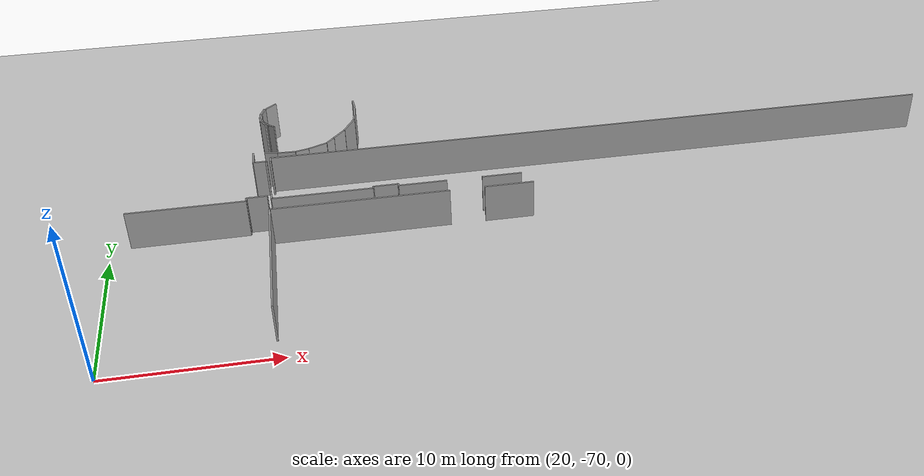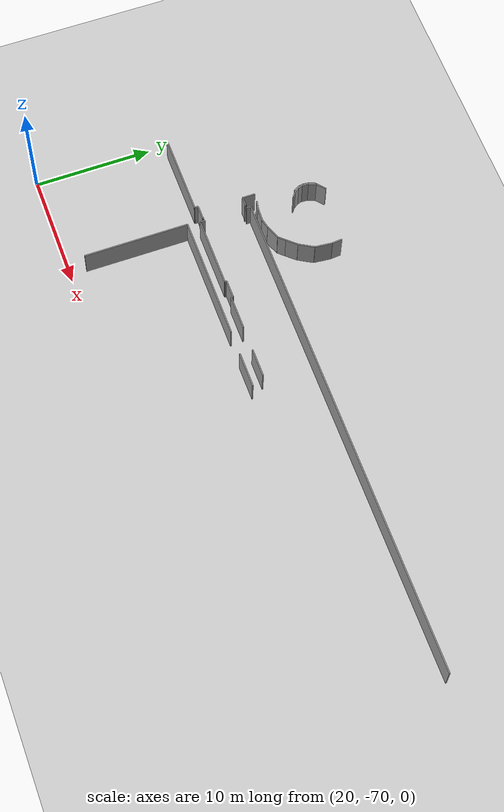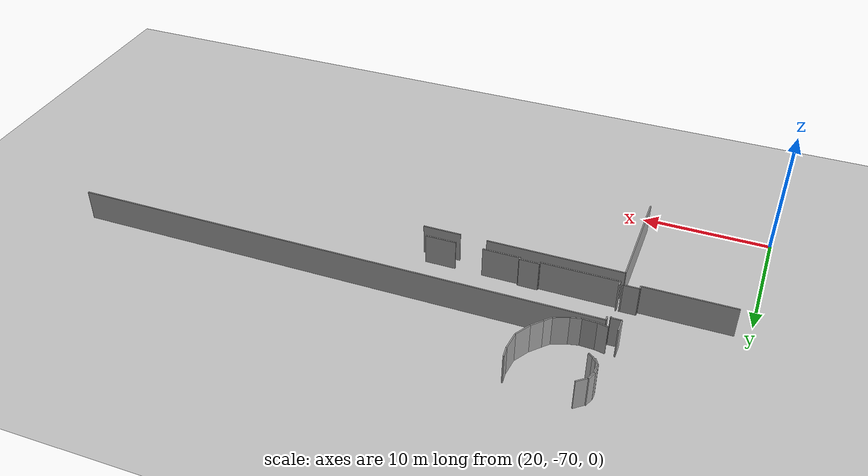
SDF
<sdf version="1.6">
 <world name="default">
  <model name="ground_plane">
   <static>1</static>
   <link name="link">
    <collision name="collision">
     <geometry><plane><normal>0 0 1</normal><size>100 100</size></plane></geometry>
     <surface><friction><ode><mu>100</mu><mu2>50</mu2></ode></friction></surface>
    </collision>
    <visual name="visual">
     <cast_shadows>0</cast_shadows>
     <geometry><plane><normal>0 0 1</normal><size>100 100</size></plane></geometry>
     <material>
      <script><uri>file://media/materials/scripts/gazebo.material</uri><name>Gazebo/Grey</name></script>
     </material>
    </visual>
   </link>
  </model>
  <model name="0510035518_A_40_1_101">
   <static>1</static>
   <link name="Wall_225">
    <collision name="Wall_225_Collision">
     <geometry><box><size>0.684761901372 0.1 2.5</size></box></geometry>
     <pose>0.342380950686 0 1.25 0 0 0</pose>
    </collision>
    <visual name="Wall_225_Visual">
     <pose>0.342380950686 0 1.25 0 0 0</pose>
     <geometry><box><size>0.684761901372 0.1 2.5</size></box></geometry>
     <material>
      <script><uri>file://media/materials/scripts/gazebo.material</uri><name>Gazebo/Grey</name></script>
      <ambient>1 1 1 1</ambient>
     </material>
    </visual>
    <pose>146.113178787 -116.901619562 0 0 0 -1.94689350065</pose>
   </link>
   <link name="Wall_226">
    <collision name="Wall_226_Collision">
     <geometry><box><size>0.429461764337 0.1 2.5</size></box></geometry>
     <pose>0.214730882168 0 1.25 0 0 0</pose>
    </collision>
    <visual name="Wall_226_Visual">
     <pose>0.214730882168 0 1.25 0 0 0</pose>
     <geometry><box><size>0.429461764337 0.1 2.5</size></box></geometry>
     <material>
      <script><uri>file://media/materials/scripts/gazebo.material</uri><name>Gazebo/Grey</name></script>
      <ambient>1 1 1 1</ambient>
     </material>
    </visual>
    <pose>145.861670372 -117.538520165 0 0 0 -1.67093587218</pose>
   </link>
   <link name="Wall_227">
    <collision name="Wall_227_Collision">
     <geometry><box><size>0.371400035721 0.1 2.5</size></box></geometry>
     <pose>0.18570001786 0 1.25 0 0 0</pose>
    </collision>
    <visual name="Wall_227_Visual">
     <pose>0.18570001786 0 1.25 0 0 0</pose>
     <geometry><box><size>0.371400035721 0.1 2.5</size></box></geometry>
     <material>
      <script><uri>file://media/materials/scripts/gazebo.material</uri><name>Gazebo/Grey</name></script>
      <ambient>1 1 1 1</ambient>
     </material>
    </visual>
    <pose>145.818736107 -117.965830422 0 0 0 -1.46663546385</pose>
   </link>
   <link name="Wall_228">
    <collision name="Wall_228_Collision">
     <geometry><box><size>0.650359687576 0.1 2.5</size></box></geometry>
     <pose>0.325179843788 0 1.25 0 0 0</pose>
    </collision>
    <visual name="Wall_228_Visual">
     <pose>0.325179843788 0 1.25 0 0 0</pose>
     <geometry><box><size>0.650359687576 0.1 2.5</size></box></geometry>
     <material>
      <script><uri>file://media/materials/scripts/gazebo.material</uri><name>Gazebo/Grey</name></script>
      <ambient>1 1 1 1</ambient>
     </material>
    </visual>
    <pose>145.85735154 -118.335217529 0 0 0 -1.04719266176</pose>
   </link>
   <link name="Wall_229">
    <collision name="Wall_229_Collision">
     <geometry><box><size>1.07411876786 0.1 2.5</size></box></geometry>
     <pose>0.537059383931 0 1.25 0 0 0</pose>
    </collision>
    <visual name="Wall_229_Visual">
     <pose>0.537059383931 0 1.25 0 0 0</pose>
     <geometry><box><size>1.07411876786 0.1 2.5</size></box></geometry>
     <material>
      <script><uri>file://media/materials/scripts/gazebo.material</uri><name>Gazebo/Grey</name></script>
      <ambient>1 1 1 1</ambient>
     </material>
    </visual>
    <pose>145.36119403 -122.111146396 0 0 0 -1.57079632679</pose>
   </link>
   <link name="Wall_230">
    <collision name="Wall_230_Collision">
     <geometry><box><size>0.785519212448 0.1 2.5</size></box></geometry>
     <pose>0.392759606224 0 1.25 0 0 0</pose>
    </collision>
    <visual name="Wall_230_Visual">
     <pose>0.392759606224 0 1.25 0 0 0</pose>
     <geometry><box><size>0.785519212448 0.1 2.5</size></box></geometry>
     <material>
      <script><uri>file://media/materials/scripts/gazebo.material</uri><name>Gazebo/Grey</name></script>
      <ambient>1 1 1 1</ambient>
     </material>
    </visual>
    <pose>145.36119403 -123.185265164 0 0 0 0.0</pose>
   </link>
   <link name="Wall_231">
    <collision name="Wall_231_Collision">
     <geometry><box><size>0.109241028898 0.1 2.5</size></box></geometry>
     <pose>0.054620514449 0 1.25 0 0 0</pose>
    </collision>
    <visual name="Wall_231_Visual">
     <pose>0.054620514449 0 1.25 0 0 0</pose>
     <geometry><box><size>0.109241028898 0.1 2.5</size></box></geometry>
     <material>
      <script><uri>file://media/materials/scripts/gazebo.material</uri><name>Gazebo/Grey</name></script>
      <ambient>1 1 1 1</ambient>
     </material>
    </visual>
    <pose>146.146713242 -123.185265164 0 0 0 -1.57079632679</pose>
   </link>
   <link name="Wall_232">
    <collision name="Wall_232_Collision">
     <geometry><box><size>0.0815496983169 0.1 2.5</size></box></geometry>
     <pose>0.0407748491585 0 1.25 0 0 0</pose>
    </collision>
    <visual name="Wall_232_Visual">
     <pose>0.0407748491585 0 1.25 0 0 0</pose>
     <geometry><box><size>0.0815496983169 0.1 2.5</size></box></geometry>
     <material>
      <script><uri>file://media/materials/scripts/gazebo.material</uri><name>Gazebo/Grey</name></script>
      <ambient>1 1 1 1</ambient>
     </material>
    </visual>
    <pose>146.146713242 -126.864909495 0 0 0 -1.57079632679</pose>
   </link>
   <link name="Wall_233">
    <collision name="Wall_233_Collision">
     <geometry><box><size>1.22121308352 0.1 2.5</size></box></geometry>
     <pose>0.610606541759 0 1.25 0 0 0</pose>
    </collision>
    <visual name="Wall_233_Visual">
     <pose>0.610606541759 0 1.25 0 0 0</pose>
     <geometry><box><size>1.22121308352 0.1 2.5</size></box></geometry>
     <material>
      <script><uri>file://media/materials/scripts/gazebo.material</uri><name>Gazebo/Grey</name></script>
      <ambient>1 1 1 1</ambient>
     </material>
    </visual>
    <pose>146.146713242 -126.946459193 0 0 0 3.14159265359</pose>
   </link>
   <link name="Wall_234">
    <collision name="Wall_234_Collision">
     <geometry><box><size>0.30790727215 0.1 2.5</size></box></geometry>
     <pose>0.153953636075 0 1.25 0 0 0</pose>
    </collision>
    <visual name="Wall_234_Visual">
     <pose>0.153953636075 0 1.25 0 0 0</pose>
     <geometry><box><size>0.30790727215 0.1 2.5</size></box></geometry>
     <material>
      <script><uri>file://media/materials/scripts/gazebo.material</uri><name>Gazebo/Grey</name></script>
      <ambient>1 1 1 1</ambient>
     </material>
    </visual>
    <pose>144.925500159 -126.946459193 0 0 0 -1.57079632679</pose>
   </link>
   <link name="Wall_235">
    <collision name="Wall_235_Collision">
     <geometry><box><size>6.99855367895 0.1 2.5</size></box></geometry>
     <pose>3.49927683948 0 1.25 0 0 0</pose>
    </collision>
    <visual name="Wall_235_Visual">
     <pose>3.49927683948 0 1.25 0 0 0</pose>
     <geometry><box><size>6.99855367895 0.1 2.5</size></box></geometry>
     <material>
      <script><uri>file://media/materials/scripts/gazebo.material</uri><name>Gazebo/Grey</name></script>
      <ambient>1 1 1 1</ambient>
     </material>
    </visual>
    <pose>144.925500159 -127.254366466 0 0 0 -3.13955984094</pose>
   </link>
   <link name="Wall_249">
    <collision name="Wall_249_Collision">
     <geometry><box><size>0.874664847197 0.1 2.5</size></box></geometry>
     <pose>0.437332423598 0 1.25 0 0 0</pose>
    </collision>
    <visual name="Wall_249_Visual">
     <pose>0.437332423598 0 1.25 0 0 0</pose>
     <geometry><box><size>0.874664847197 0.1 2.5</size></box></geometry>
     <material>
      <script><uri>file://media/materials/scripts/gazebo.material</uri><name>Gazebo/Grey</name></script>
      <ambient>1 1 1 1</ambient>
     </material>
    </visual>
    <pose>151.86789457 -116.891965703 0 0 0 -1.48763097411</pose>
   </link>
   <link name="Wall_250">
    <collision name="Wall_250_Collision">
     <geometry><box><size>1.47431145919 0.1 2.5</size></box></geometry>
     <pose>0.737155729595 0 1.25 0 0 0</pose>
    </collision>
    <visual name="Wall_250_Visual">
     <pose>0.737155729595 0 1.25 0 0 0</pose>
     <geometry><box><size>1.47431145919 0.1 2.5</size></box></geometry>
     <material>
      <script><uri>file://media/materials/scripts/gazebo.material</uri><name>Gazebo/Grey</name></script>
      <ambient>1 1 1 1</ambient>
     </material>
    </visual>
    <pose>151.940552556 -117.763607494 0 0 0 -1.6695219392</pose>
   </link>
   <link name="Wall_251">
    <collision name="Wall_251_Collision">
     <geometry><box><size>1.39251620445 0.1 2.5</size></box></geometry>
     <pose>0.696258102224 0 1.25 0 0 0</pose>
    </collision>
    <visual name="Wall_251_Visual">
     <pose>0.696258102224 0 1.25 0 0 0</pose>
     <geometry><box><size>1.39251620445 0.1 2.5</size></box></geometry>
     <material>
      <script><uri>file://media/materials/scripts/gazebo.material</uri><name>Gazebo/Grey</name></script>
      <ambient>1 1 1 1</ambient>
     </material>
    </visual>
    <pose>151.795236583 -119.230739917 0 0 0 -2.09510181686</pose>
   </link>
   <link name="Wall_252">
    <collision name="Wall_252_Collision">
     <geometry><box><size>1.0700927374 0.1 2.5</size></box></geometry>
     <pose>0.535046368701 0 1.25 0 0 0</pose>
    </collision>
    <visual name="Wall_252_Visual">
     <pose>0.535046368701 0 1.25 0 0 0</pose>
     <geometry><box><size>1.0700927374 0.1 2.5</size></box></geometry>
     <material>
      <script><uri>file://media/materials/scripts/gazebo.material</uri><name>Gazebo/Grey</name></script>
      <ambient>1 1 1 1</ambient>
     </material>
    </visual>
    <pose>151.098126389 -120.436201969 0 0 0 -2.29858217756</pose>
   </link>
   <link name="Wall_253">
    <collision name="Wall_253_Collision">
     <geometry><box><size>0.709172408828 0.1 2.5</size></box></geometry>
     <pose>0.354586204414 0 1.25 0 0 0</pose>
    </collision>
    <visual name="Wall_253_Visual">
     <pose>0.354586204414 0 1.25 0 0 0</pose>
     <geometry><box><size>0.709172408828 0.1 2.5</size></box></geometry>
     <material>
      <script><uri>file://media/materials/scripts/gazebo.material</uri><name>Gazebo/Grey</name></script>
      <ambient>1 1 1 1</ambient>
     </material>
    </visual>
    <pose>150.386281359 -121.235185773 0 0 0 -2.31261155836</pose>
   </link>
   <link name="Wall_254">
    <collision name="Wall_254_Collision">
     <geometry><box><size>1.21930583102 0.1 2.5</size></box></geometry>
     <pose>0.609652915509 0 1.25 0 0 0</pose>
    </collision>
    <visual name="Wall_254_Visual">
     <pose>0.609652915509 0 1.25 0 0 0</pose>
     <geometry><box><size>1.21930583102 0.1 2.5</size></box></geometry>
     <material>
      <script><uri>file://media/materials/scripts/gazebo.material</uri><name>Gazebo/Grey</name></script>
      <ambient>1 1 1 1</ambient>
     </material>
    </visual>
    <pose>149.907145125 -121.758018419 0 0 0 -2.76321426212</pose>
   </link>
   <link name="Wall_255">
    <collision name="Wall_255_Collision">
     <geometry><box><size>0.835077452535 0.1 2.5</size></box></geometry>
     <pose>0.417538726267 0 1.25 0 0 0</pose>
    </collision>
    <visual name="Wall_255_Visual">
     <pose>0.417538726267 0 1.25 0 0 0</pose>
     <geometry><box><size>0.835077452535 0.1 2.5</size></box></geometry>
     <material>
      <script><uri>file://media/materials/scripts/gazebo.material</uri><name>Gazebo/Grey</name></script>
      <ambient>1 1 1 1</ambient>
     </material>
    </visual>
    <pose>148.774087012 -122.208447126 0 0 0 -2.91358527802</pose>
   </link>
   <link name="Wall_256">
    <collision name="Wall_256_Collision">
     <geometry><box><size>1.10470702831 0.1 2.5</size></box></geometry>
     <pose>0.552353514157 0 1.25 0 0 0</pose>
    </collision>
    <visual name="Wall_256_Visual">
     <pose>0.552353514157 0 1.25 0 0 0</pose>
     <geometry><box><size>1.10470702831 0.1 2.5</size></box></geometry>
     <material>
      <script><uri>file://media/materials/scripts/gazebo.material</uri><name>Gazebo/Grey</name></script>
      <ambient>1 1 1 1</ambient>
     </material>
    </visual>
    <pose>147.96062242 -122.397205462 0 0 0 3.10202758079</pose>
   </link>
   <link name="Wall_257">
    <collision name="Wall_257_Collision">
     <geometry><box><size>0.800612258339 0.1 2.5</size></box></geometry>
     <pose>0.40030612917 0 1.25 0 0 0</pose>
    </collision>
    <visual name="Wall_257_Visual">
     <pose>0.40030612917 0 1.25 0 0 0</pose>
     <geometry><box><size>0.800612258339 0.1 2.5</size></box></geometry>
     <material>
      <script><uri>file://media/materials/scripts/gazebo.material</uri><name>Gazebo/Grey</name></script>
      <ambient>1 1 1 1</ambient>
     </material>
    </visual>
    <pose>146.85677993 -122.35350905 0 0 0 2.94064990593</pose>
   </link>
   <link name="Wall_258">
    <collision name="Wall_258_Collision">
     <geometry><box><size>0.44632604023 0.1 2.5</size></box></geometry>
     <pose>0.223163020115 0 1.25 0 0 0</pose>
    </collision>
    <visual name="Wall_258_Visual">
     <pose>0.223163020115 0 1.25 0 0 0</pose>
     <geometry><box><size>0.44632604023 0.1 2.5</size></box></geometry>
     <material>
      <script><uri>file://media/materials/scripts/gazebo.material</uri><name>Gazebo/Grey</name></script>
      <ambient>1 1 1 1</ambient>
     </material>
    </visual>
    <pose>146.711463957 -119.201524293 0 0 0 2.52074765388</pose>
   </link>
   <link name="Wall_259">
    <collision name="Wall_259_Collision">
     <geometry><box><size>0.527150742059 0.1 2.5</size></box></geometry>
     <pose>0.26357537103 0 1.25 0 0 0</pose>
    </collision>
    <visual name="Wall_259_Visual">
     <pose>0.26357537103 0 1.25 0 0 0</pose>
     <geometry><box><size>0.527150742059 0.1 2.5</size></box></geometry>
     <material>
      <script><uri>file://media/materials/scripts/gazebo.material</uri><name>Gazebo/Grey</name></script>
      <ambient>1 1 1 1</ambient>
     </material>
    </visual>
    <pose>146.348428072 -118.941886313 0 0 0 2.2005138474</pose>
   </link>
   <link name="Wall_260">
    <collision name="Wall_260_Collision">
     <geometry><box><size>0.411086061507 0.1 2.5</size></box></geometry>
     <pose>0.205543030754 0 1.25 0 0 0</pose>
    </collision>
    <visual name="Wall_260_Visual">
     <pose>0.205543030754 0 1.25 0 0 0</pose>
     <geometry><box><size>0.411086061507 0.1 2.5</size></box></geometry>
     <material>
      <script><uri>file://media/materials/scripts/gazebo.material</uri><name>Gazebo/Grey</name></script>
      <ambient>1 1 1 1</ambient>
     </material>
    </visual>
    <pose>146.037980311 -118.5158463 0 0 0 1.8927423082</pose>
   </link>
   <link name="Wall_261">
    <collision name="Wall_261_Collision">
     <geometry><box><size>0.54943425031 0.1 2.5</size></box></geometry>
     <pose>0.274717125155 0 1.25 0 0 0</pose>
    </collision>
    <visual name="Wall_261_Visual">
     <pose>0.274717125155 0 1.25 0 0 0</pose>
     <geometry><box><size>0.54943425031 0.1 2.5</size></box></geometry>
     <material>
      <script><uri>file://media/materials/scripts/gazebo.material</uri><name>Gazebo/Grey</name></script>
      <ambient>1 1 1 1</ambient>
     </material>
    </visual>
    <pose>145.907907272 -118.125881232 0 0 0 1.53102092551</pose>
   </link>
   <link name="Wall_262">
    <collision name="Wall_262_Collision">
     <geometry><box><size>0.688001582581 0.1 2.5</size></box></geometry>
     <pose>0.344000791291 0 1.25 0 0 0</pose>
    </collision>
    <visual name="Wall_262_Visual">
     <pose>0.344000791291 0 1.25 0 0 0</pose>
     <geometry><box><size>0.688001582581 0.1 2.5</size></box></geometry>
     <material>
      <script><uri>file://media/materials/scripts/gazebo.material</uri><name>Gazebo/Grey</name></script>
      <ambient>1 1 1 1</ambient>
     </material>
    </visual>
    <pose>145.929755478 -117.57688155 0 0 0 1.20606151253</pose>
   </link>
   <link name="Wall_263">
    <collision name="Wall_263_Collision">
     <geometry><box><size>0.901591071188 0.1 2.5</size></box></geometry>
     <pose>0.450795535594 0 1.25 0 0 0</pose>
    </collision>
    <visual name="Wall_263_Visual">
     <pose>0.450795535594 0 1.25 0 0 0</pose>
     <geometry><box><size>0.901591071188 0.1 2.5</size></box></geometry>
     <material>
      <script><uri>file://media/materials/scripts/gazebo.material</uri><name>Gazebo/Grey</name></script>
      <ambient>1 1 1 1</ambient>
     </material>
    </visual>
    <pose>146.17516672 -116.934137822 0 0 0 0.705814457661</pose>
   </link>
   <link name="Wall_275">
    <collision name="Wall_275_Collision">
     <geometry><box><size>8.88434423627 0.1 2.5</size></box></geometry>
     <pose>4.44217211813 0 1.25 0 0 0</pose>
    </collision>
    <visual name="Wall_275_Visual">
     <pose>4.44217211813 0 1.25 0 0 0</pose>
     <geometry><box><size>8.88434423627 0.1 2.5</size></box></geometry>
     <material>
      <script><uri>file://media/materials/scripts/gazebo.material</uri><name>Gazebo/Grey</name></script>
      <ambient>1 1 1 1</ambient>
     </material>
    </visual>
    <pose>146.263321689 -137.218672594 0 0 0 1.57079632679</pose>
   </link>
   <link name="Wall_276">
    <collision name="Wall_276_Collision">
     <geometry><box><size>10.6057796126 0.1 2.5</size></box></geometry>
     <pose>5.30288980629 0 1.25 0 0 0</pose>
    </collision>
    <visual name="Wall_276_Visual">
     <pose>5.30288980629 0 1.25 0 0 0</pose>
     <geometry><box><size>10.6057796126 0.1 2.5</size></box></geometry>
     <material>
      <script><uri>file://media/materials/scripts/gazebo.material</uri><name>Gazebo/Grey</name></script>
      <ambient>1 1 1 1</ambient>
     </material>
    </visual>
    <pose>146.263321689 -128.334328358 0 0 0 0.0</pose>
   </link>
   <link name="Wall_277">
    <collision name="Wall_277_Collision">
     <geometry><box><size>2.98507462687 0.1 2.5</size></box></geometry>
     <pose>1.49253731343 0 1.25 0 0 0</pose>
    </collision>
    <visual name="Wall_277_Visual">
     <pose>1.49253731343 0 1.25 0 0 0</pose>
     <geometry><box><size>2.98507462687 0.1 2.5</size></box></geometry>
     <material>
      <script><uri>file://media/materials/scripts/gazebo.material</uri><name>Gazebo/Grey</name></script>
      <ambient>1 1 1 1</ambient>
     </material>
    </visual>
    <pose>158.963226421 -128.334328358 0 0 0 0.0</pose>
   </link>
   <link name="Wall_285">
    <collision name="Wall_285_Collision">
     <geometry><box><size>42.2584947602 0.1 2.5</size></box></geometry>
     <pose>21.1292473801 0 1.25 0 0 0</pose>
    </collision>
    <visual name="Wall_285_Visual">
     <pose>21.1292473801 0 1.25 0 0 0</pose>
     <geometry><box><size>42.2584947602 0.1 2.5</size></box></geometry>
     <material>
      <script><uri>file://media/materials/scripts/gazebo.material</uri><name>Gazebo/Grey</name></script>
      <ambient>1 1 1 1</ambient>
     </material>
    </visual>
    <pose>146.398983804 -122.841536996 0 0 0 0.0</pose>
   </link>
   <link name="Wall_303">
    <collision name="Wall_303_Collision">
     <geometry><box><size>2.42438869482 0.1 2.5</size></box></geometry>
     <pose>1.21219434741 0 1.25 0 0 0</pose>
    </collision>
    <visual name="Wall_303_Visual">
     <pose>1.21219434741 0 1.25 0 0 0</pose>
     <geometry><box><size>2.42438869482 0.1 2.5</size></box></geometry>
     <material>
      <script><uri>file://media/materials/scripts/gazebo.material</uri><name>Gazebo/Grey</name></script>
      <ambient>1 1 1 1</ambient>
     </material>
    </visual>
    <pose>161.391171801 -127.268339155 0 0 0 3.14159265359</pose>
   </link>
   <link name="Wall_304">
    <collision name="Wall_304_Collision">
     <geometry><box><size>2.90784375992 0.1 2.5</size></box></geometry>
     <pose>1.45392187996 0 1.25 0 0 0</pose>
    </collision>
    <visual name="Wall_304_Visual">
     <pose>1.45392187996 0 1.25 0 0 0</pose>
     <geometry><box><size>2.90784375992 0.1 2.5</size></box></geometry>
     <material>
      <script><uri>file://media/materials/scripts/gazebo.material</uri><name>Gazebo/Grey</name></script>
      <ambient>1 1 1 1</ambient>
     </material>
    </visual>
    <pose>156.830485869 -127.268339155 0 0 0 3.14159265359</pose>
   </link>
   <link name="Wall_305">
    <collision name="Wall_305_Collision">
     <geometry><box><size>0.168688472531 0.1 2.5</size></box></geometry>
     <pose>0.0843442362655 0 1.25 0 0 0</pose>
    </collision>
    <visual name="Wall_305_Visual">
     <pose>0.0843442362655 0 1.25 0 0 0</pose>
     <geometry><box><size>0.168688472531 0.1 2.5</size></box></geometry>
     <material>
      <script><uri>file://media/materials/scripts/gazebo.material</uri><name>Gazebo/Grey</name></script>
      <ambient>1 1 1 1</ambient>
     </material>
    </visual>
    <pose>153.922642109 -127.268339155 0 0 0 1.57079632679</pose>
   </link>
   <link name="Wall_306">
    <collision name="Wall_306_Collision">
     <geometry><box><size>1.52403937758 0.1 2.5</size></box></geometry>
     <pose>0.76201968879 0 1.25 0 0 0</pose>
    </collision>
    <visual name="Wall_306_Visual">
     <pose>0.76201968879 0 1.25 0 0 0</pose>
     <geometry><box><size>1.52403937758 0.1 2.5</size></box></geometry>
     <material>
      <script><uri>file://media/materials/scripts/gazebo.material</uri><name>Gazebo/Grey</name></script>
      <ambient>1 1 1 1</ambient>
     </material>
    </visual>
    <pose>153.922642109 -127.099650683 0 0 0 3.14159265359</pose>
   </link>
   <link name="Wall_307">
    <collision name="Wall_307_Collision">
     <geometry><box><size>0.166147983487 0.1 2.5</size></box></geometry>
     <pose>0.0830739917434 0 1.25 0 0 0</pose>
    </collision>
    <visual name="Wall_307_Visual">
     <pose>0.0830739917434 0 1.25 0 0 0</pose>
     <geometry><box><size>0.166147983487 0.1 2.5</size></box></geometry>
     <material>
      <script><uri>file://media/materials/scripts/gazebo.material</uri><name>Gazebo/Grey</name></script>
      <ambient>1 1 1 1</ambient>
     </material>
    </visual>
    <pose>152.398602731 -127.099650683 0 0 0 -1.57079632679</pose>
   </link>
   <link name="Wall_308">
    <collision name="Wall_308_Collision">
     <geometry><box><size>5.99834868212 0.1 2.5</size></box></geometry>
     <pose>2.99917434106 0 1.25 0 0 0</pose>
    </collision>
    <visual name="Wall_308_Visual">
     <pose>2.99917434106 0 1.25 0 0 0</pose>
     <geometry><box><size>5.99834868212 0.1 2.5</size></box></geometry>
     <material>
      <script><uri>file://media/materials/scripts/gazebo.material</uri><name>Gazebo/Grey</name></script>
      <ambient>1 1 1 1</ambient>
     </material>
    </visual>
    <pose>152.398602731 -127.265798666 0 0 0 3.14159265359</pose>
   </link>
   <link name="Wall_309">
    <collision name="Wall_309_Collision">
     <geometry><box><size>0.420959034614 0.1 2.5</size></box></geometry>
     <pose>0.210479517307 0 1.25 0 0 0</pose>
    </collision>
    <visual name="Wall_309_Visual">
     <pose>0.210479517307 0 1.25 0 0 0</pose>
     <geometry><box><size>0.420959034614 0.1 2.5</size></box></geometry>
     <material>
      <script><uri>file://media/materials/scripts/gazebo.material</uri><name>Gazebo/Grey</name></script>
      <ambient>1 1 1 1</ambient>
     </material>
    </visual>
    <pose>146.400254049 -127.265798666 0 0 0 1.57079632679</pose>
   </link>
   <link name="Wall_310">
    <collision name="Wall_310_Collision">
     <geometry><box><size>0.387426661594 0.1 2.5</size></box></geometry>
     <pose>0.193713330797 0 1.25 0 0 0</pose>
    </collision>
    <visual name="Wall_310_Visual">
     <pose>0.193713330797 0 1.25 0 0 0</pose>
     <geometry><box><size>0.387426661594 0.1 2.5</size></box></geometry>
     <material>
      <script><uri>file://media/materials/scripts/gazebo.material</uri><name>Gazebo/Grey</name></script>
      <ambient>1 1 1 1</ambient>
     </material>
    </visual>
    <pose>146.400254049 -123.228961575 0 0 0 1.57407500357</pose>
   </link>
   <pose>-116.8 68.630612893 0 0 0 0</pose>
  </model>
 </world>
</sdf>
